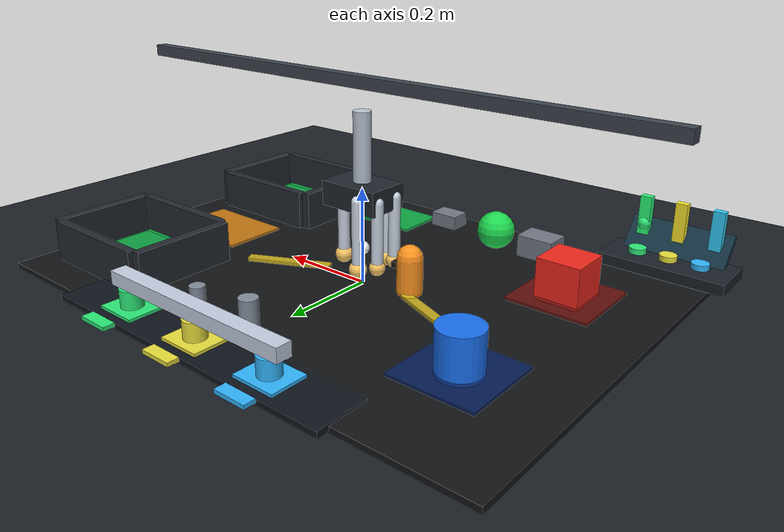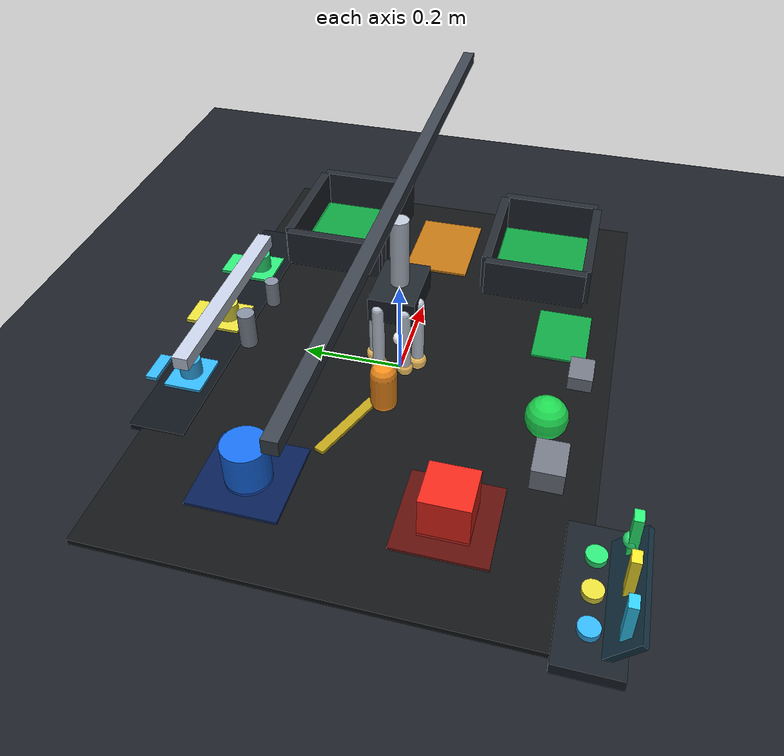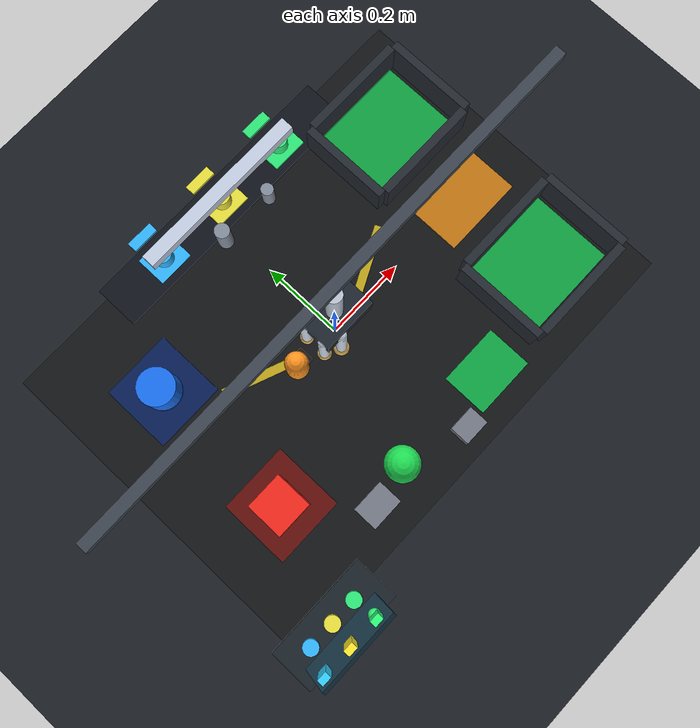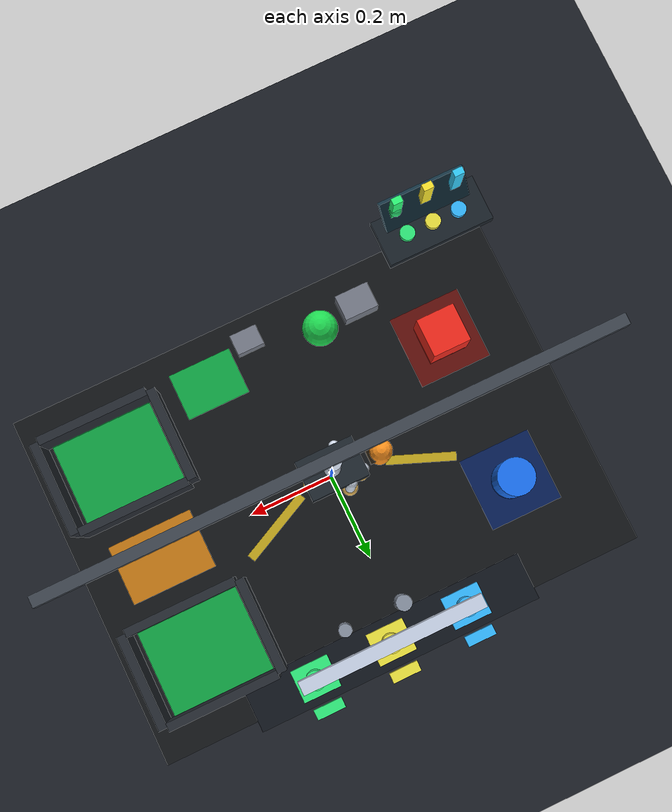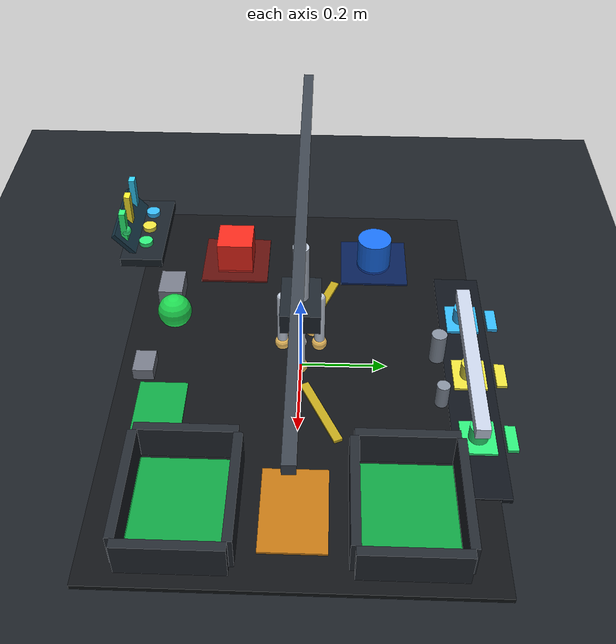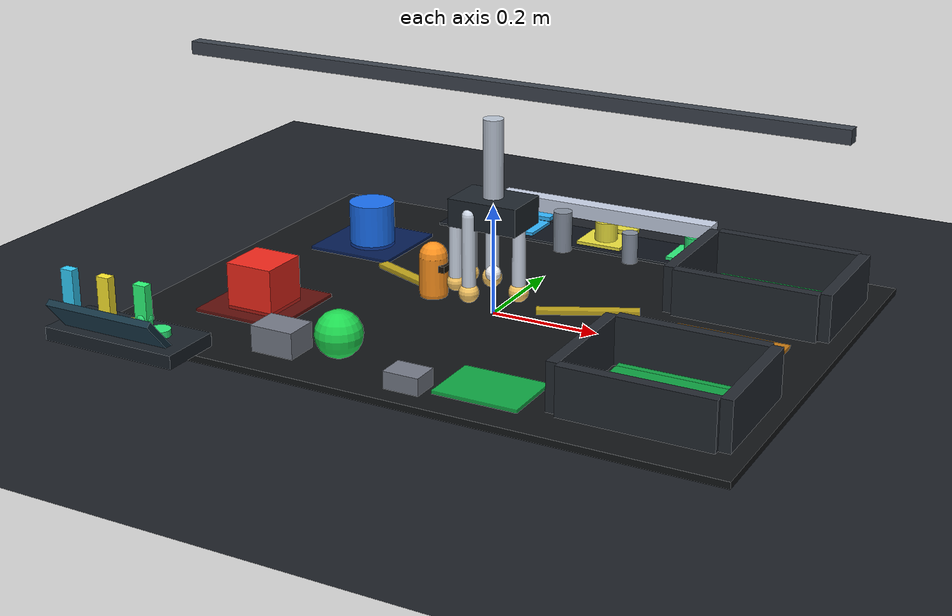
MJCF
<mujoco model="aidoog_sentinel_sorter">
  <compiler angle="radian" autolimits="true"/>

  <option timestep="0.004" integrator="RK4" gravity="0 0 -9.81" cone="elliptic"/>

  <statistic center="0.05 0 0.18" extent="1.15"/>

  <visual>
    <headlight ambient="0.18 0.18 0.2" diffuse="0.7 0.7 0.74" specular="0.35 0.35 0.35"/>
    <global azimuth="145" elevation="-26" offwidth="960" offheight="544"/>
    <quality shadowsize="2048" offsamples="4"/>
    <rgba haze="0.07 0.08 0.10 1"/>
  </visual>

  <default>
    <joint damping="1.2" armature="0.012" frictionloss="0.02"/>
    <geom condim="4" friction="1.05 0.015 0.001" solimp="0.92 0.98 0.003" solref="0.012 1"/>
    <site rgba="0.9 0.95 1 1" size="0.012"/>
    <default class="finger">
      <geom type="capsule" size="0.012" rgba="0.82 0.86 0.92 1" friction="1.35 0.03 0.003"/>
    </default>
    <default class="bin">
      <geom type="box" rgba="0.14 0.16 0.19 1" contype="1" conaffinity="1"/>
    </default>
  </default>

  <asset>
    <texture name="floor_grid" type="2d" builtin="checker" rgb1="0.09 0.10 0.12" rgb2="0.13 0.15 0.18" width="256" height="256"/>
    <material name="floor_grid" texture="floor_grid" texrepeat="6 6" reflectance="0.12"/>
    <material name="red_part" rgba="0.95 0.16 0.11 1"/>
    <material name="blue_part" rgba="0.10 0.44 0.95 1"/>
    <material name="amber" rgba="1.00 0.58 0.12 1"/>
    <material name="cap_mark" rgba="0.10 0.07 0.03 1"/>
    <material name="green_goal" rgba="0.10 0.80 0.34 0.82"/>
    <material name="green_part" rgba="0.12 0.86 0.32 1"/>
    <material name="relay_beam" rgba="0.78 0.82 0.90 1"/>
    <material name="relay_left" rgba="0.20 0.72 1.00 1"/>
    <material name="relay_center" rgba="0.92 0.88 0.24 1"/>
    <material name="relay_right" rgba="0.18 0.92 0.48 1"/>
    <material name="robot_shell" rgba="0.74 0.78 0.84 1"/>
    <material name="palm_dark" rgba="0.12 0.15 0.18 1"/>
  </asset>

  <worldbody>
    <camera name="overview" pos="0.92 -0.92 0.68" xyaxes="0.72 0.69 0 -0.34 0.36 0.87"/>
    <camera name="wrist_cam" mode="track" pos="0.14 -0.08 0.12" xyaxes="0.78 0.62 0 -0.46 0.58 0.68"/>

    <light name="key" pos="-0.6 -0.5 1.2" dir="0.55 0.45 -1" diffuse="0.9 0.9 0.85"/>
    <light name="rim" pos="0.7 0.5 0.8" dir="-0.5 -0.3 -1" diffuse="0.35 0.45 0.65"/>

    <geom name="floor" type="plane" material="floor_grid" size="1.2 1.0 0.04"/>
    <geom name="work_mat" type="box" pos="0.02 0 0.006" size="0.58 0.42 0.006" rgba="0.07 0.08 0.09 1"/>

    <geom name="distractor_post_a" type="cylinder" pos="-0.02 0.32 0.045" size="0.018 0.045" rgba="0.52 0.56 0.62 1"/>
    <geom name="distractor_post_b" type="cylinder" pos="0.12 0.32 0.035" size="0.015 0.035" rgba="0.52 0.56 0.62 1"/>
    <geom name="distractor_block_a" type="box" pos="-0.22 -0.33 0.032" size="0.040 0.030 0.026" rgba="0.46 0.48 0.53 1"/>
    <geom name="distractor_block_b" type="box" pos="0.04 -0.36 0.024" size="0.032 0.024 0.018" rgba="0.46 0.48 0.53 1"/>
    <geom name="distractor_hazard_a" type="box" pos="0.16 0.05 0.014" euler="0 0 0.45" size="0.090 0.010 0.006" rgba="0.95 0.82 0.16 0.82"/>
    <geom name="distractor_hazard_b" type="box" pos="-0.20 0.05 0.014" euler="0 0 -0.38" size="0.080 0.010 0.006" rgba="0.95 0.82 0.16 0.82"/>

    <geom name="operator_console_base" type="box" pos="-0.46 -0.43 0.024" size="0.130 0.055 0.012" rgba="0.10 0.13 0.16 1"/>
    <geom name="operator_console_screen" type="box" pos="-0.46 -0.475 0.060" euler="0.70 0 0" size="0.105 0.006 0.040" rgba="0.08 0.20 0.26 1" contype="0" conaffinity="0"/>
    <geom name="operator_request_button" type="cylinder" pos="-0.525 -0.425 0.043" size="0.018 0.006" rgba="0.20 0.72 1.00 1"/>
    <geom name="operator_relay_ack_button" type="cylinder" pos="-0.460 -0.425 0.043" size="0.018 0.006" rgba="0.92 0.88 0.24 1"/>
    <geom name="operator_recovery_approve_button" type="cylinder" pos="-0.395 -0.425 0.043" size="0.018 0.006" rgba="0.18 0.92 0.48 1"/>
    <geom name="operator_status_light" type="sphere" pos="-0.385 -0.472 0.087" size="0.014" rgba="0.18 0.92 0.48 1" contype="0" conaffinity="0"/>
    <geom name="operator_request_cue" type="box" pos="-0.535 -0.475 0.105" size="0.012 0.008 0.042" rgba="0.20 0.82 1.00 1" contype="0" conaffinity="0"/>
    <geom name="operator_ack_cue" type="box" pos="-0.460 -0.475 0.105" size="0.012 0.008 0.042" rgba="1.00 0.92 0.18 1" contype="0" conaffinity="0"/>
    <geom name="operator_approve_cue" type="box" pos="-0.385 -0.475 0.105" size="0.012 0.008 0.042" rgba="0.18 1.00 0.48 1" contype="0" conaffinity="0"/>

    <geom name="red_pick_pad" type="box" pos="-0.36 -0.18 0.012" size="0.085 0.085 0.006" rgba="0.50 0.10 0.08 0.8"/>
    <geom name="blue_pick_pad" type="box" pos="-0.36 0.18 0.012" size="0.085 0.085 0.006" rgba="0.06 0.17 0.44 0.8"/>

    <geom name="red_bin_floor" type="box" pos="0.42 -0.23 0.012" size="0.12 0.10 0.006" material="green_goal"/>
    <geom name="amber_slot_floor" type="box" pos="0.42 0.00 0.012" size="0.10 0.07 0.006" rgba="1.00 0.62 0.12 0.78"/>
    <geom name="blue_bin_floor" type="box" pos="0.42 0.23 0.012" size="0.12 0.10 0.006" material="green_goal"/>
    <geom name="green_slot_floor" type="box" pos="0.16 -0.31 0.012" size="0.075 0.055 0.006" rgba="0.10 0.86 0.36 0.78"/>
    <geom name="red_bin_back" class="bin" pos="0.42 -0.34 0.052" size="0.13 0.01 0.045"/>
    <geom name="red_bin_front" class="bin" pos="0.42 -0.12 0.052" size="0.13 0.01 0.045"/>
    <geom name="red_bin_left" class="bin" pos="0.28 -0.23 0.052" size="0.01 0.11 0.045"/>
    <geom name="red_bin_right" class="bin" pos="0.56 -0.23 0.052" size="0.01 0.11 0.045"/>
    <geom name="blue_bin_back" class="bin" pos="0.42 0.12 0.052" size="0.13 0.01 0.045"/>
    <geom name="blue_bin_front" class="bin" pos="0.42 0.34 0.052" size="0.13 0.01 0.045"/>
    <geom name="blue_bin_left" class="bin" pos="0.28 0.23 0.052" size="0.01 0.11 0.045"/>
    <geom name="blue_bin_right" class="bin" pos="0.56 0.23 0.052" size="0.01 0.11 0.045"/>

    <geom name="relay_bench_pad" type="box" pos="0.04 0.39 0.010" size="0.34 0.055 0.006" rgba="0.06 0.08 0.11 1"/>
    <geom name="relay_left_target" type="box" pos="-0.145 0.39 0.018" size="0.045 0.038 0.004" material="relay_left"/>
    <geom name="relay_center_target" type="box" pos="0.04 0.39 0.018" size="0.045 0.038 0.004" material="relay_center"/>
    <geom name="relay_right_target" type="box" pos="0.225 0.39 0.018" size="0.045 0.038 0.004" material="relay_right"/>
    <geom name="relay_force_gauge_left_base" type="box" pos="-0.145 0.462 0.018" size="0.034 0.012 0.004" material="relay_left" contype="0" conaffinity="0"/>
    <geom name="relay_force_gauge_center_base" type="box" pos="0.04 0.462 0.018" size="0.034 0.012 0.004" material="relay_center" contype="0" conaffinity="0"/>
    <geom name="relay_force_gauge_right_base" type="box" pos="0.225 0.462 0.018" size="0.034 0.012 0.004" material="relay_right" contype="0" conaffinity="0"/>

    <body name="relay_beam" pos="0.04 0.39 0.074">
      <freejoint name="relay_beam_freejoint"/>
      <geom name="relay_beam_geom" type="box" size="0.220 0.016 0.014" material="relay_beam" mass="5.0" contype="0" conaffinity="0"/>
      <site name="relay_beam_center" pos="0 0 0" size="0.008" rgba="1 1 1 1"/>
    </body>

    <body name="relay_left_robot" pos="-0.145 0.39 0.034">
      <freejoint name="relay_left_robot_freejoint"/>
      <geom type="cylinder" size="0.022 0.025" material="relay_left" mass="0.02" contype="0" conaffinity="0"/>
      <site name="relay_left_contact" pos="0 0 0.028" size="0.010" rgba="0.20 0.72 1.00 1"/>
    </body>

    <body name="relay_center_robot" pos="0.04 0.39 0.034">
      <freejoint name="relay_center_robot_freejoint"/>
      <geom type="cylinder" size="0.022 0.025" material="relay_center" mass="0.02" contype="0" conaffinity="0"/>
      <site name="relay_center_contact" pos="0 0 0.028" size="0.010" rgba="0.92 0.88 0.24 1"/>
    </body>

    <body name="relay_right_robot" pos="0.225 0.39 0.034">
      <freejoint name="relay_right_robot_freejoint"/>
      <geom type="cylinder" size="0.022 0.025" material="relay_right" mass="0.02" contype="0" conaffinity="0"/>
      <site name="relay_right_contact" pos="0 0 0.028" size="0.010" rgba="0.18 0.92 0.48 1"/>
    </body>

    <body name="relay_force_gauge_left_level1" pos="-0.145 0.462 -0.060">
      <freejoint name="relay_force_gauge_left_level1_freejoint"/>
      <geom type="box" size="0.030 0.010 0.008" material="relay_left" mass="0.001" contype="0" conaffinity="0"/>
    </body>
    <body name="relay_force_gauge_left_level2" pos="-0.145 0.462 -0.060">
      <freejoint name="relay_force_gauge_left_level2_freejoint"/>
      <geom type="box" size="0.030 0.010 0.008" material="relay_left" mass="0.001" contype="0" conaffinity="0"/>
    </body>
    <body name="relay_force_gauge_left_level3" pos="-0.145 0.462 -0.060">
      <freejoint name="relay_force_gauge_left_level3_freejoint"/>
      <geom type="box" size="0.030 0.010 0.008" material="relay_left" mass="0.001" contype="0" conaffinity="0"/>
    </body>
    <body name="relay_force_gauge_center_level1" pos="0.04 0.462 -0.060">
      <freejoint name="relay_force_gauge_center_level1_freejoint"/>
      <geom type="box" size="0.030 0.010 0.008" material="relay_center" mass="0.001" contype="0" conaffinity="0"/>
    </body>
    <body name="relay_force_gauge_center_level2" pos="0.04 0.462 -0.060">
      <freejoint name="relay_force_gauge_center_level2_freejoint"/>
      <geom type="box" size="0.030 0.010 0.008" material="relay_center" mass="0.001" contype="0" conaffinity="0"/>
    </body>
    <body name="relay_force_gauge_center_level3" pos="0.04 0.462 -0.060">
      <freejoint name="relay_force_gauge_center_level3_freejoint"/>
      <geom type="box" size="0.030 0.010 0.008" material="relay_center" mass="0.001" contype="0" conaffinity="0"/>
    </body>
    <body name="relay_force_gauge_right_level1" pos="0.225 0.462 -0.060">
      <freejoint name="relay_force_gauge_right_level1_freejoint"/>
      <geom type="box" size="0.030 0.010 0.008" material="relay_right" mass="0.001" contype="0" conaffinity="0"/>
    </body>
    <body name="relay_force_gauge_right_level2" pos="0.225 0.462 -0.060">
      <freejoint name="relay_force_gauge_right_level2_freejoint"/>
      <geom type="box" size="0.030 0.010 0.008" material="relay_right" mass="0.001" contype="0" conaffinity="0"/>
    </body>
    <body name="relay_force_gauge_right_level3" pos="0.225 0.462 -0.060">
      <freejoint name="relay_force_gauge_right_level3_freejoint"/>
      <geom type="box" size="0.030 0.010 0.008" material="relay_right" mass="0.001" contype="0" conaffinity="0"/>
    </body>

    <body name="red_cube" pos="-0.36 -0.18 0.052">
      <freejoint name="red_cube_freejoint"/>
      <geom name="red_cube_geom" type="box" size="0.045 0.045 0.045" material="red_part" mass="0.11"/>
      <site name="red_cube_center" pos="0 0 0" size="0.006" rgba="1 0.45 0.35 1"/>
    </body>

    <body name="blue_cylinder" pos="-0.36 0.18 0.052">
      <freejoint name="blue_cylinder_freejoint"/>
      <geom name="blue_cylinder_geom" type="cylinder" size="0.043 0.045" material="blue_part" mass="0.10"/>
      <site name="blue_cylinder_center" pos="0 0 0" size="0.006" rgba="0.35 0.65 1 1"/>
    </body>

    <body name="amber_capsule" pos="-0.12 0 0.052">
      <freejoint name="amber_capsule_freejoint"/>
      <geom name="amber_capsule_geom" type="capsule" size="0.026 0.034" material="amber" mass="0.08"/>
      <geom name="amber_capsule_rotation_mark" type="box" pos="0.026 0 0.018" size="0.006 0.018 0.006" material="cap_mark" mass="0.002"/>
      <site name="amber_capsule_center" pos="0 0 0" size="0.006" rgba="1 0.72 0.25 1"/>
    </body>

    <body name="green_sphere" pos="-0.12 -0.31 0.052">
      <freejoint name="green_sphere_freejoint"/>
      <geom name="green_sphere_geom" type="sphere" size="0.041" material="green_part" mass="0.075"/>
      <site name="green_sphere_center" pos="0 0 0" size="0.006" rgba="0.4 1 0.45 1"/>
    </body>

    <body name="cartesian_wrist" pos="0 0 0.19">
      <joint name="gantry_x" type="slide" axis="1 0 0" range="-0.55 0.58"/>
      <joint name="gantry_y" type="slide" axis="0 1 0" range="-0.40 0.40"/>
      <joint name="gantry_z" type="slide" axis="0 0 1" range="0.02 0.36"/>
      <joint name="wrist_yaw" type="hinge" axis="0 0 1" range="-3.14159 3.14159"/>

      <geom name="gantry_crossbar" type="box" pos="0 0 0.22" size="0.62 0.012 0.012" rgba="0.24 0.27 0.31 1" contype="0" conaffinity="0"/>
      <geom name="wrist_column" type="cylinder" pos="0 0 0.075" size="0.018 0.09" material="robot_shell" contype="0" conaffinity="0"/>
      <geom name="palm" type="box" pos="0 0 0" size="0.065 0.045 0.025" material="palm_dark"/>
      <site name="wrist_imu" pos="0 0 0.04" size="0.01" rgba="0.2 1 0.55 1"/>
      <site name="grasp_center" pos="0 0 -0.115" size="0.014" rgba="1 1 1 1"/>

      <body name="finger_a" pos="0.050 0 0.004" euler="0 0 0">
        <joint name="finger_a_knuckle" type="hinge" axis="0 1 0" range="-0.15 1.05"/>
        <geom class="finger" fromto="0 0 -0.005 0.000 0 -0.140"/>
        <body name="finger_a_tip" pos="0 0 -0.145">
          <geom type="sphere" size="0.016" rgba="0.95 0.98 1 1" friction="1.6 0.04 0.004"/>
          <site name="finger_a_touch" pos="0 0 0" size="0.018" rgba="1 0.8 0.4 1"/>
        </body>
      </body>

      <body name="finger_b" pos="-0.025 0.043 0.004" euler="0 0 2.094395">
        <joint name="finger_b_knuckle" type="hinge" axis="0 1 0" range="-0.15 1.05"/>
        <geom class="finger" fromto="0 0 -0.005 0.000 0 -0.140"/>
        <body name="finger_b_tip" pos="0 0 -0.145">
          <geom type="sphere" size="0.016" rgba="0.95 0.98 1 1" friction="1.6 0.04 0.004"/>
          <site name="finger_b_touch" pos="0 0 0" size="0.018" rgba="1 0.8 0.4 1"/>
        </body>
      </body>

      <body name="finger_c" pos="-0.025 -0.043 0.004" euler="0 0 -2.094395">
        <joint name="finger_c_knuckle" type="hinge" axis="0 1 0" range="-0.15 1.05"/>
        <geom class="finger" fromto="0 0 -0.005 0.000 0 -0.140"/>
        <body name="finger_c_tip" pos="0 0 -0.145">
          <geom type="sphere" size="0.016" rgba="0.95 0.98 1 1" friction="1.6 0.04 0.004"/>
          <site name="finger_c_touch" pos="0 0 0" size="0.018" rgba="1 0.8 0.4 1"/>
        </body>
      </body>

      <body name="finger_d" pos="-0.060 0.026 0.004" euler="0 0 2.748894">
        <joint name="finger_d_knuckle" type="hinge" axis="0 1 0" range="-0.15 1.05"/>
        <geom class="finger" fromto="0 0 -0.005 0.000 0 -0.132"/>
        <body name="finger_d_tip" pos="0 0 -0.137">
          <geom type="sphere" size="0.014" rgba="0.95 0.98 1 1" friction="1.6 0.04 0.004"/>
          <site name="finger_d_touch" pos="0 0 0" size="0.016" rgba="1 0.8 0.4 1"/>
        </body>
      </body>

      <body name="finger_e" pos="-0.060 -0.026 0.004" euler="0 0 -2.748894">
        <joint name="finger_e_knuckle" type="hinge" axis="0 1 0" range="-0.15 1.05"/>
        <geom class="finger" fromto="0 0 -0.005 0.000 0 -0.132"/>
        <body name="finger_e_tip" pos="0 0 -0.137">
          <geom type="sphere" size="0.014" rgba="0.95 0.98 1 1" friction="1.6 0.04 0.004"/>
          <site name="finger_e_touch" pos="0 0 0" size="0.016" rgba="1 0.8 0.4 1"/>
        </body>
      </body>
    </body>
  </worldbody>

  <actuator>
    <position name="x_position" joint="gantry_x" kp="220" dampratio="0.85" ctrlrange="-0.55 0.58"/>
    <position name="y_position" joint="gantry_y" kp="220" dampratio="0.85" ctrlrange="-0.40 0.40"/>
    <position name="z_position" joint="gantry_z" kp="260" dampratio="0.90" ctrlrange="0.02 0.36"/>
    <position name="yaw_position" joint="wrist_yaw" kp="55" dampratio="0.80" ctrlrange="-3.14159 3.14159"/>
    <position name="finger_a_position" joint="finger_a_knuckle" kp="40" dampratio="0.85" ctrlrange="-0.12 1.0"/>
    <position name="finger_b_position" joint="finger_b_knuckle" kp="40" dampratio="0.85" ctrlrange="-0.12 1.0"/>
    <position name="finger_c_position" joint="finger_c_knuckle" kp="40" dampratio="0.85" ctrlrange="-0.12 1.0"/>
    <position name="finger_d_position" joint="finger_d_knuckle" kp="34" dampratio="0.85" ctrlrange="-0.12 1.0"/>
    <position name="finger_e_position" joint="finger_e_knuckle" kp="34" dampratio="0.85" ctrlrange="-0.12 1.0"/>
  </actuator>

  <sensor>
    <jointpos name="gantry_x_pos" joint="gantry_x"/>
    <jointpos name="gantry_y_pos" joint="gantry_y"/>
    <jointpos name="gantry_z_pos" joint="gantry_z"/>
    <jointvel name="gantry_x_vel" joint="gantry_x"/>
    <jointvel name="gantry_y_vel" joint="gantry_y"/>
    <jointvel name="gantry_z_vel" joint="gantry_z"/>
    <jointpos name="finger_a_pos" joint="finger_a_knuckle"/>
    <jointpos name="finger_b_pos" joint="finger_b_knuckle"/>
    <jointpos name="finger_c_pos" joint="finger_c_knuckle"/>
    <jointpos name="finger_d_pos" joint="finger_d_knuckle"/>
    <jointpos name="finger_e_pos" joint="finger_e_knuckle"/>
    <touch name="finger_a_contact" site="finger_a_touch"/>
    <touch name="finger_b_contact" site="finger_b_touch"/>
    <touch name="finger_c_contact" site="finger_c_touch"/>
    <touch name="finger_d_contact" site="finger_d_touch"/>
    <touch name="finger_e_contact" site="finger_e_touch"/>
    <accelerometer name="wrist_accel" site="wrist_imu"/>
    <gyro name="wrist_gyro" site="wrist_imu"/>
    <framepos name="red_cube_pos" objtype="body" objname="red_cube"/>
    <framepos name="blue_cylinder_pos" objtype="body" objname="blue_cylinder"/>
    <framepos name="amber_capsule_pos" objtype="body" objname="amber_capsule"/>
    <framepos name="green_sphere_pos" objtype="body" objname="green_sphere"/>
    <framepos name="relay_beam_pos" objtype="body" objname="relay_beam"/>
    <framepos name="relay_left_robot_pos" objtype="body" objname="relay_left_robot"/>
    <framepos name="relay_center_robot_pos" objtype="body" objname="relay_center_robot"/>
    <framepos name="relay_right_robot_pos" objtype="body" objname="relay_right_robot"/>
    <framepos name="relay_force_gauge_left_level3_pos" objtype="body" objname="relay_force_gauge_left_level3"/>
    <framepos name="relay_force_gauge_center_level3_pos" objtype="body" objname="relay_force_gauge_center_level3"/>
    <framepos name="relay_force_gauge_right_level3_pos" objtype="body" objname="relay_force_gauge_right_level3"/>
  </sensor>
</mujoco>
